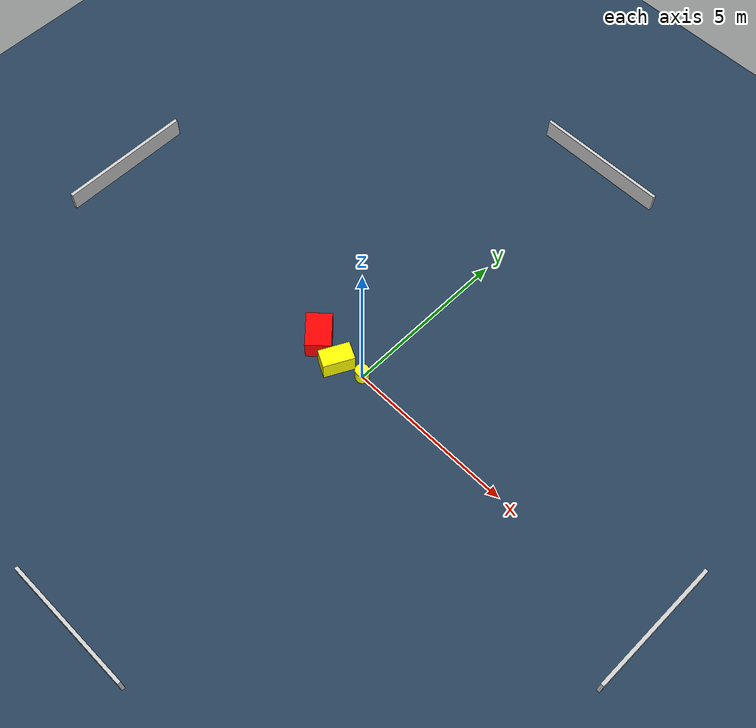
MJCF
<?xml version="1.0" ?>
<mujoco model="generated_environment">
  <option timestep="0.01" integrator="RK4" cone="elliptic"/>
  <default>
    <geom density="1"/>
  </default>
  <asset>
    <texture builtin="gradient" height="3072" name="skybox" rgb1="0.3 0.5 0.7" rgb2="0 0 0" type="skybox" width="512"/>
    <texture builtin="checker" height="300" name="groundplane" rgb1="0.2 0.3 0.4" rgb2="0.1 0.2 0.3" type="2d" width="300"/>
    <material name="groundplane" reflectance="0.2" texrepeat="5 5" texture="groundplane"/>
  </asset>
  <worldbody>
    <light dir="0 0 -1" directional="true" pos="0 0 1.5"/>
    <geom condim="3" friction="0.5 0.005 0.001" material="groundplane" name="floor" pos="0 0 0" size="0 0 0.05" type="plane"/>
    <body name="walls">
      <geom name="wall_1" condim="4" pos="-10.0 0.0 0.3" rgba="0.800000011920929 0.800000011920929 0.800000011920929 1.0" size="0.05 2.0 0.3" type="box"/>
      <geom name="wall_2" condim="4" pos="10.0 0.0 0.3" rgba="0.800000011920929 0.800000011920929 0.800000011920929 1.0" size="0.05 2.0 0.3" type="box"/>
      <geom name="wall_3" condim="4" pos="0.0 -10.0 0.3" rgba="0.800000011920929 0.800000011920929 0.800000011920929 1.0" size="2.0 0.05 0.3" type="box"/>
      <geom name="wall_4" condim="4" pos="0.0 10.0 0.3" rgba="0.800000011920929 0.800000011920929 0.800000011920929 1.0" size="2.0 0.05 0.3" type="box"/>
    </body>
    <body name="robot">
      <joint name="joint_x" type="slide" pos="0 0 0" axis="1 0 0"/>
      <joint name="joint_y" type="slide" pos="0 0 0" axis="0 1 0"/>
      <geom name="robot" type="cylinder" pos="0.0 0.0 0.2" size="0.2 0.2 0.0" mass="5.0" friction="1.0 0.005 0.0001" condim="4" rgba="1.0 1.0 0.0 1.0"/>
    </body>
    <body name="obstacle_1_movable">
      <geom name="obstacle_1_movable" condim="4" pos="-0.7564383894025611 -0.23259668524370675 0.3" euler="0 0 152.86705276825487" friction="0.0 0.005 0.001" rgba="1.0 1.0 0.0 1.0" size="0.26904326983643556 0.45576064529338745 0.3" type="box" mass="0.1"/>
      <joint type="free"/>
    </body>
    <body name="obstacle_2_static">
      <geom name="obstacle_2_static" condim="4" pos="-1.6617950745609118 -0.024069250024064584 0.3" euler="0 0 313.85635933511094" friction="0.0 0.005 0.001" rgba="1.0 0.0 0.0 1.0" size="0.5176964918213516 0.3694305918092209 0.3" type="box"/>
    </body>
  </worldbody>
  <actuator>
    <motor name="actuator_x" joint="joint_x" gear="1" ctrlrange="-1 1"/>
    <motor name="actuator_y" joint="joint_y" gear="1" ctrlrange="-1 1"/>
  </actuator>
</mujoco>
